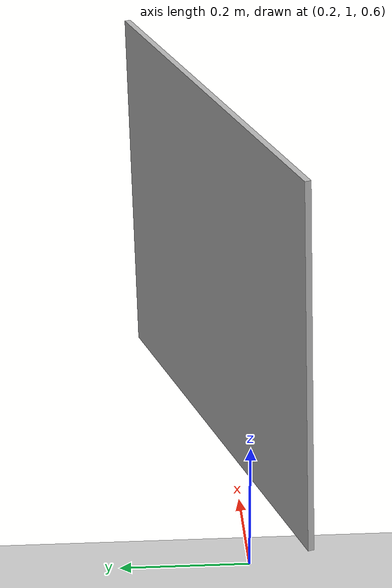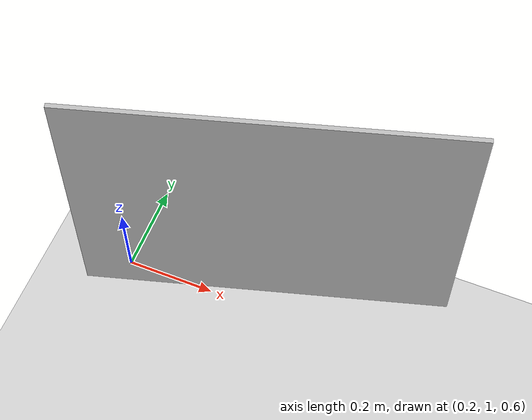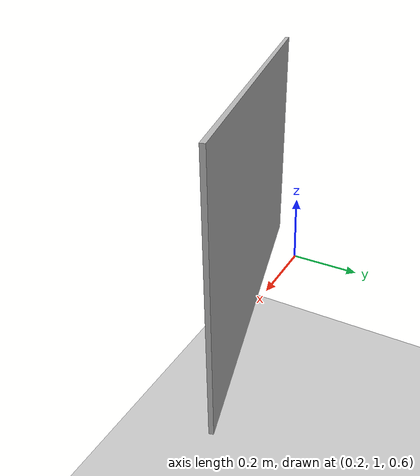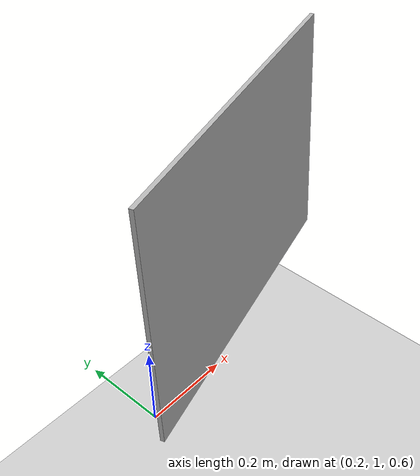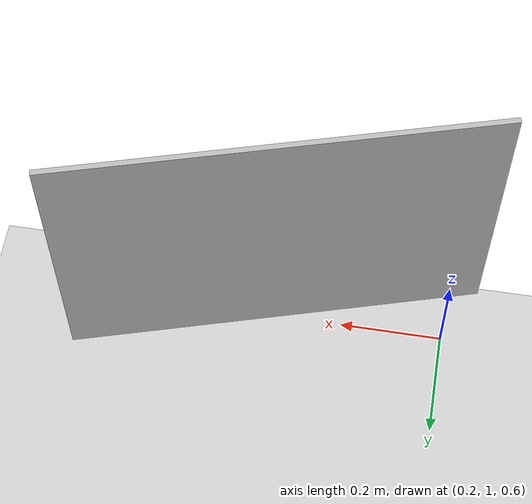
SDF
<sdf version="1.7">
 <world name="default">
  <model name="ground_plane">
   <static>1</static>
   <link name="link">
    <collision name="collision">
     <geometry><plane><normal>0 0 1</normal><size>100 100</size></plane></geometry>
     <surface>
      <contact><collide_bitmask>65535</collide_bitmask></contact>
      <friction><ode><mu>100</mu><mu2>50</mu2></ode></friction>
     </surface>
    </collision>
    <visual name="visual">
     <cast_shadows>0</cast_shadows>
     <geometry><plane><normal>0 0 1</normal><size>100 100</size></plane></geometry>
     <material>
      <script><uri>file://media/materials/scripts/gazebo.material</uri><name>Gazebo/Grey</name></script>
     </material>
    </visual>
   </link>
  </model>
  <light name="sun" type="directional">
   <pose>0 0 10 0 -0 0</pose>
   <diffuse>0.8 0.8 0.8 1</diffuse>
   <specular>0.2 0.2 0.2 1</specular>
   <attenuation>
    <range>1000</range>
    <constant>0.9</constant>
    <linear>0.01</linear>
    <quadratic>0.001</quadratic>
   </attenuation>
   <direction>-0.5 0.1 -0.9</direction>
   <spot><inner_angle>0</inner_angle><outer_angle>0</outer_angle><falloff>0</falloff></spot>
  </light>
  <model name="charuco_800x600">
   <static>1</static>
   <link name="charuco">
    <visual name="charuco_800x600_visual">
     <geometry><mesh><uri>model://charuco_800x600/charuco_800x600.dae</uri></mesh></geometry>
    </visual>
    <collision name="charuco_800x600_collision">
     <geometry><mesh><uri>model://charuco_800x600/charuco_800x600.dae</uri></mesh></geometry>
    </collision>
   </link>
   <pose>0.237988 0.937797 0.745828 1.54151 -0 0.285351</pose>
  </model>
  <gravity>0 0 -9.8</gravity>
  <magnetic_field>6e-06 2.3e-05 -4.2e-05</magnetic_field>
  <atmosphere type="adiabatic"/>
  <physics type="ode">
   <max_step_size>0.001</max_step_size>
   <real_time_factor>1</real_time_factor>
   <real_time_update_rate>1000</real_time_update_rate>
  </physics>
  <scene><ambient>0.4 0.4 0.4 1</ambient><background>0.7 0.7 0.7 1</background><shadows>1</shadows></scene>
  <spherical_coordinates>
   <surface_model>EARTH_WGS84</surface_model>
   <latitude_deg>0</latitude_deg>
   <longitude_deg>0</longitude_deg>
   <elevation>0</elevation>
   <heading_deg>0</heading_deg>
  </spherical_coordinates>
  <light name="user_point_light_0" type="point">
   <pose>0.469229 -0.074373 1 0 -0 0</pose>
   <diffuse>0.5 0.5 0.5 1</diffuse>
   <specular>0.1 0.1 0.1 1</specular>
   <attenuation>
    <range>20</range>
    <constant>0.5</constant>
    <linear>0.01</linear>
    <quadratic>0.001</quadratic>
   </attenuation>
   <cast_shadows>0</cast_shadows>
   <direction>0 0 -1</direction>
   <spot><inner_angle>0</inner_angle><outer_angle>0</outer_angle><falloff>0</falloff></spot>
  </light>
  <light name="user_point_light_1" type="point">
   <pose>-0.933863 -0.186371 1 0 -0 0</pose>
   <diffuse>0.5 0.5 0.5 1</diffuse>
   <specular>0.1 0.1 0.1 1</specular>
   <attenuation>
    <range>20</range>
    <constant>0.5</constant>
    <linear>0.01</linear>
    <quadratic>0.001</quadratic>
   </attenuation>
   <cast_shadows>0</cast_shadows>
   <direction>0 0 -1</direction>
   <spot><inner_angle>0</inner_angle><outer_angle>0</outer_angle><falloff>0</falloff></spot>
  </light>
  <light name="user_point_light_2" type="point">
   <pose>-1.07079 1.08955 1 0 -0 0</pose>
   <diffuse>0.5 0.5 0.5 1</diffuse>
   <specular>0.1 0.1 0.1 1</specular>
   <attenuation>
    <range>20</range>
    <constant>0.5</constant>
    <linear>0.01</linear>
    <quadratic>0.001</quadratic>
   </attenuation>
   <cast_shadows>0</cast_shadows>
   <direction>0 0 -1</direction>
   <spot><inner_angle>0</inner_angle><outer_angle>0</outer_angle><falloff>0</falloff></spot>
  </light>
  <light name="user_point_light_3" type="point">
   <pose>0.45135 0.869982 1 0 -0 0</pose>
   <diffuse>0.5 0.5 0.5 1</diffuse>
   <specular>0.1 0.1 0.1 1</specular>
   <attenuation>
    <range>20</range>
    <constant>0.5</constant>
    <linear>0.01</linear>
    <quadratic>0.001</quadratic>
   </attenuation>
   <cast_shadows>0</cast_shadows>
   <direction>0 0 -1</direction>
   <spot><inner_angle>0</inner_angle><outer_angle>0</outer_angle><falloff>0</falloff></spot>
  </light>
  <light name="user_point_light_4" type="point">
   <pose>1.52353 0.764558 1 0 -0 0</pose>
   <diffuse>0.5 0.5 0.5 1</diffuse>
   <specular>0.1 0.1 0.1 1</specular>
   <attenuation>
    <range>20</range>
    <constant>0.5</constant>
    <linear>0.01</linear>
    <quadratic>0.001</quadratic>
   </attenuation>
   <cast_shadows>0</cast_shadows>
   <direction>0 0 -1</direction>
   <spot><inner_angle>0</inner_angle><outer_angle>0</outer_angle><falloff>0</falloff></spot>
  </light>
  <light name="user_point_light_5" type="point">
   <pose>1.42499 -0.388753 1 0 -0 0</pose>
   <diffuse>0.5 0.5 0.5 1</diffuse>
   <specular>0.1 0.1 0.1 1</specular>
   <attenuation>
    <range>20</range>
    <constant>0.5</constant>
    <linear>0.01</linear>
    <quadratic>0.001</quadratic>
   </attenuation>
   <cast_shadows>0</cast_shadows>
   <direction>0 0 -1</direction>
   <spot><inner_angle>0</inner_angle><outer_angle>0</outer_angle><falloff>0</falloff></spot>
  </light>
  <light name="user_point_light_6" type="point">
   <pose>1.5685 1.17131 1 0 -0 0</pose>
   <diffuse>0.5 0.5 0.5 1</diffuse>
   <specular>0.1 0.1 0.1 1</specular>
   <attenuation>
    <range>20</range>
    <constant>0.5</constant>
    <linear>0.01</linear>
    <quadratic>0.001</quadratic>
   </attenuation>
   <cast_shadows>0</cast_shadows>
   <direction>0 0 -1</direction>
   <spot><inner_angle>0</inner_angle><outer_angle>0</outer_angle><falloff>0</falloff></spot>
  </light>
  <light name="user_point_light_7" type="point">
   <pose>-0.308899 1.24807 1 0 -0 0</pose>
   <diffuse>0.5 0.5 0.5 1</diffuse>
   <specular>0.1 0.1 0.1 1</specular>
   <attenuation>
    <range>20</range>
    <constant>0.5</constant>
    <linear>0.01</linear>
    <quadratic>0.001</quadratic>
   </attenuation>
   <cast_shadows>0</cast_shadows>
   <direction>0 0 -1</direction>
   <spot><inner_angle>0</inner_angle><outer_angle>0</outer_angle><falloff>0</falloff></spot>
  </light>
  <light name="user_point_light_8" type="point">
   <pose>0.979869 2.09916 1 0 -0 0</pose>
   <diffuse>0.5 0.5 0.5 1</diffuse>
   <specular>0.1 0.1 0.1 1</specular>
   <attenuation>
    <range>20</range>
    <constant>0.5</constant>
    <linear>0.01</linear>
    <quadratic>0.001</quadratic>
   </attenuation>
   <cast_shadows>0</cast_shadows>
   <direction>0 0 -1</direction>
   <spot><inner_angle>0</inner_angle><outer_angle>0</outer_angle><falloff>0</falloff></spot>
  </light>
  <light name="user_point_light_9" type="point">
   <pose>0.07472 3.93797 1 0 -0 0</pose>
   <diffuse>0.5 0.5 0.5 1</diffuse>
   <specular>0.1 0.1 0.1 1</specular>
   <attenuation>
    <range>20</range>
    <constant>0.5</constant>
    <linear>0.01</linear>
    <quadratic>0.001</quadratic>
   </attenuation>
   <cast_shadows>0</cast_shadows>
   <direction>0 0 -1</direction>
   <spot><inner_angle>0</inner_angle><outer_angle>0</outer_angle><falloff>0</falloff></spot>
  </light>
  <light name="user_point_light_10" type="point">
   <pose>0.687645 -0.369576 1 0 -0 0</pose>
   <diffuse>0.5 0.5 0.5 1</diffuse>
   <specular>0.1 0.1 0.1 1</specular>
   <attenuation>
    <range>20</range>
    <constant>0.5</constant>
    <linear>0.01</linear>
    <quadratic>0.001</quadratic>
   </attenuation>
   <cast_shadows>0</cast_shadows>
   <direction>0 0 -1</direction>
  </light>
  <light name="user_point_light_11" type="point">
   <pose>-0.199994 -0.420117 1 0 -0 0</pose>
   <diffuse>0.5 0.5 0.5 1</diffuse>
   <specular>0.1 0.1 0.1 1</specular>
   <attenuation>
    <range>20</range>
    <constant>0.5</constant>
    <linear>0.01</linear>
    <quadratic>0.001</quadratic>
   </attenuation>
   <cast_shadows>0</cast_shadows>
   <direction>0 0 -1</direction>
  </light>
 </world>
</sdf>
